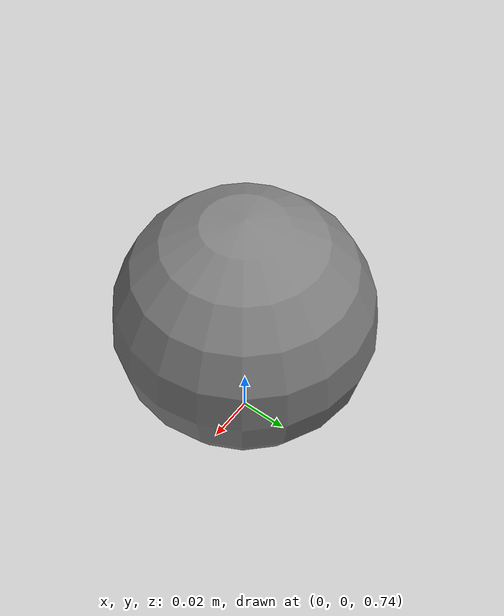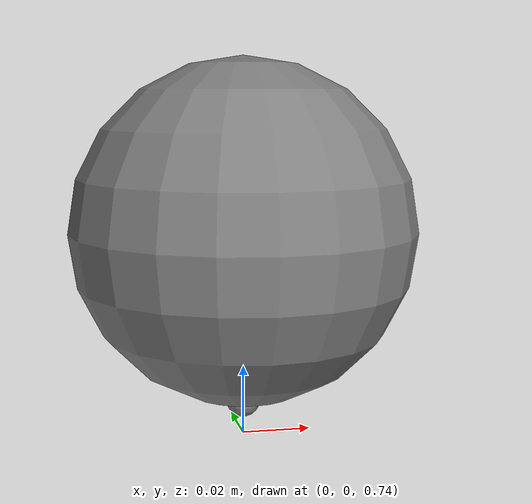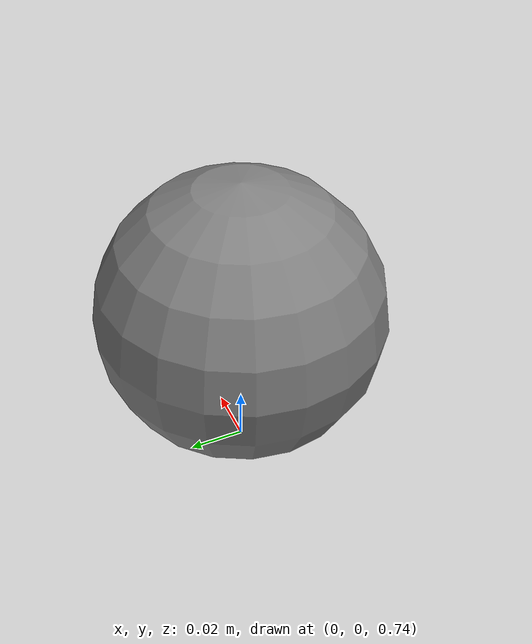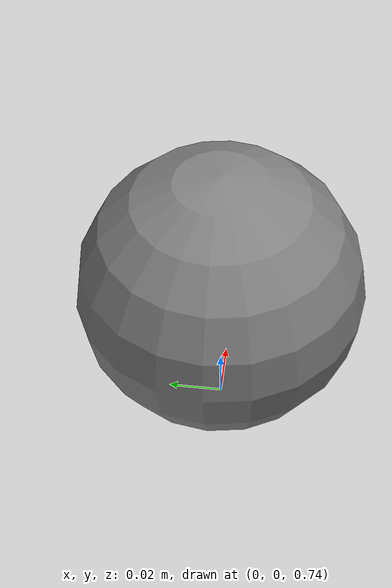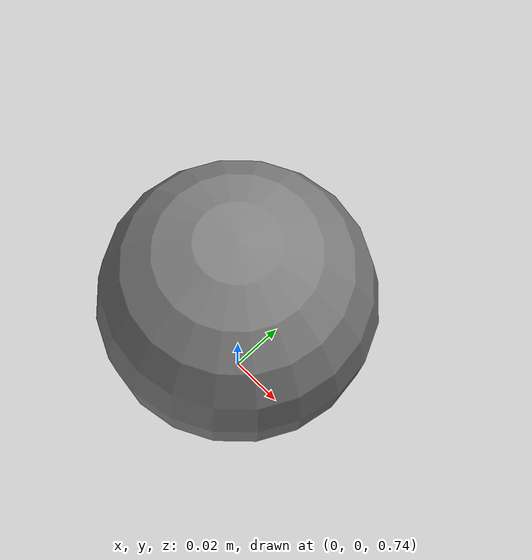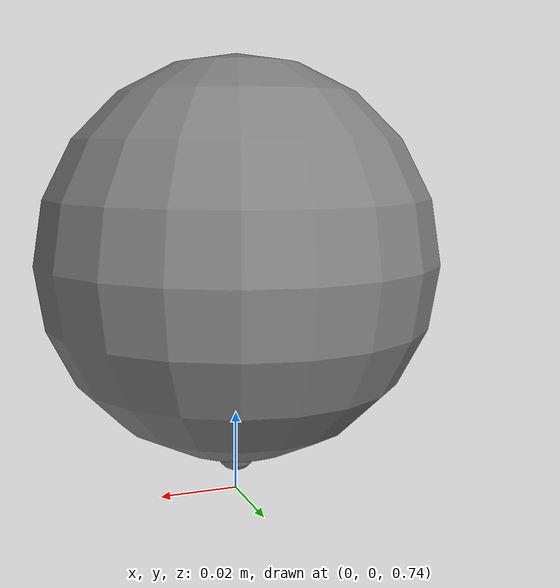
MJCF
<mujoco>
  <option timestep="0.01" integrator="RK4" gravity="0 0 -9.81">
      <flag gravity="enable"/>
  </option>
  <visual>
      <rgba haze="0.5 0.5 0.5 1"/>
      <global offwidth="1920" offheight="1080" elevation="-20" azimuth="120"/>
  </visual>

  <asset>
      <texture type="skybox" builtin="gradient" rgb1="0.4 0.6 0.8" rgb2="0 0 0" width="32" height="512"/>
      <texture name="grid" type="2d" builtin="checker" rgb1="0.2 0.3 0.4" rgb2="0.1 0.2 0.3" width="512" height="512"/>
      <material name="grid" texture="grid" texrepeat="1 1" texuniform="true" reflectance="0.2"/>
  </asset>

  <worldbody>
    <geom name="floor" size="0 0 0.01" type="plane" material="grid" condim="1" solref="1 0.1"/>
    <light name="floorlight" mode="fixed" pos="0 0 50" dir="0 0 -1" diffuse="0.8 0.8 0.8" specular="0.3 0.3 0.3"/>
    <body pos="0 0 .8">
      <joint name="slide" type="slide" stiffness="1000"/>
      <geom size=".05" mass="20"/>
      <site name="hook" pos="0 0 -.05"/>
    </body>
  </worldbody>

  <actuator>
    <general joint="slide" biasprm="2" biastype="affine"/>
  </actuator>
</mujoco>
